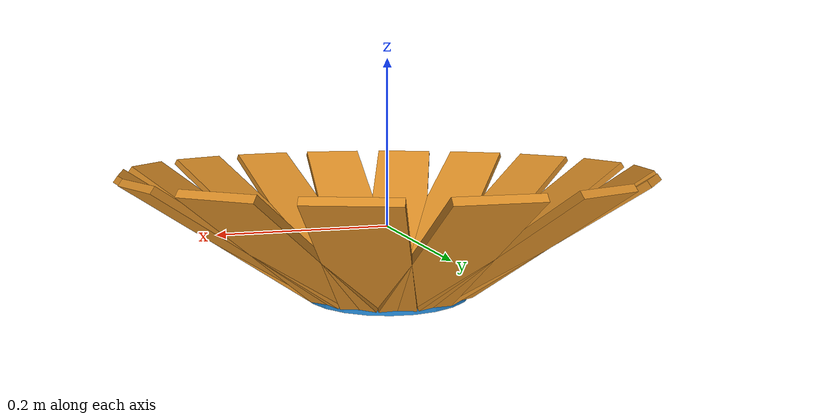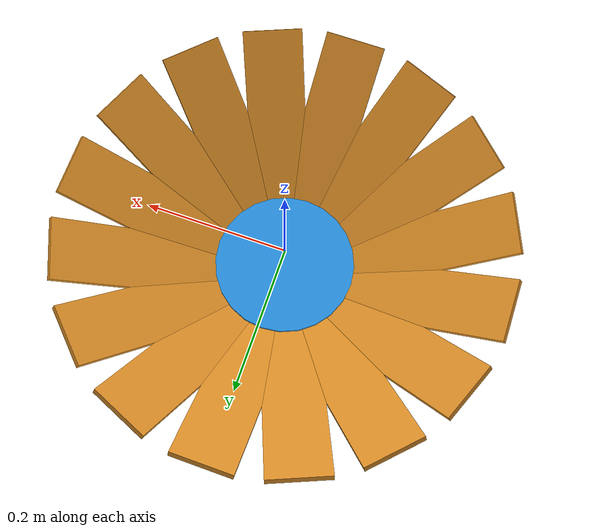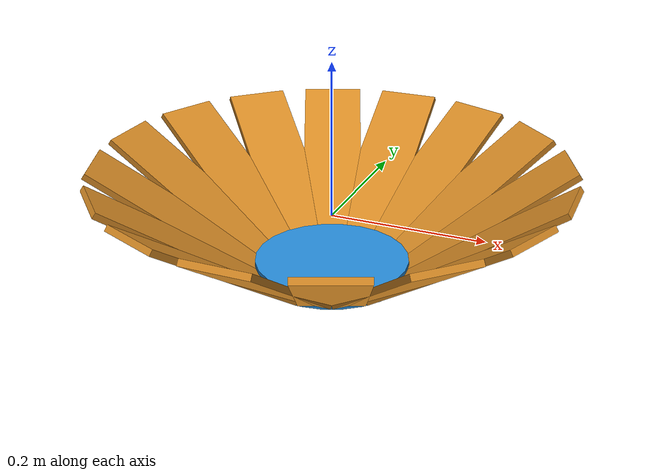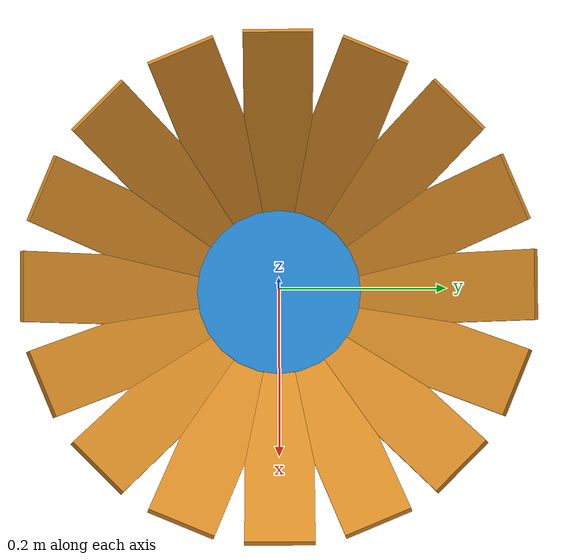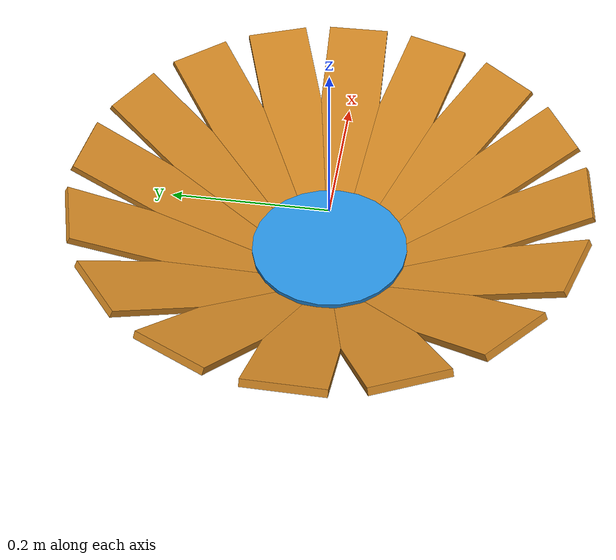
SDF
<?xml version="1.0" encoding="UTF-8"?>
<!-- funnel_cup —— 自动生成（tools/gen_funnel_cup.py）。独立空心导向锥杯（静止），供物理测试。 -->
<sdf version='1.9'>
  <model name='funnel_cup'>
    <static>true</static>
    <link name="cup">
      <pose>0 0 0 0 0 0</pose>
      <inertial><mass>0.08</mass><inertia><ixx>4.0e-4</ixx><iyy>4.0e-4</iyy><izz>4.0e-4</izz><ixy>0</ixy><ixz>0</ixz><iyz>0</iyz></inertia></inertial>
      <collision name="cup_bottom"><pose>0 0 -0.0700 0 0 0</pose><geometry><cylinder><radius>0.1000</radius><length>0.02</length></cylinder></geometry><surface><friction><ode><mu>1.0</mu><mu2>1.0</mu2></ode></friction><bounce><restitution_coefficient>0.03</restitution_coefficient></bounce></surface></collision>
      <collision name="cup_wall_0"><pose>0.2000 0.0000 0.0000 0.0000 -0.6107 0.0000</pose><geometry><box><size>0.2441 0.0827 0.008</size></box></geometry><surface><friction><ode><mu>1.0</mu><mu2>1.0</mu2></ode></friction><bounce><restitution_coefficient>0.03</restitution_coefficient></bounce></surface></collision>
      <collision name="cup_wall_1"><pose>0.1848 0.0765 0.0000 0.0000 -0.6107 0.3927</pose><geometry><box><size>0.2441 0.0827 0.008</size></box></geometry><surface><friction><ode><mu>1.0</mu><mu2>1.0</mu2></ode></friction><bounce><restitution_coefficient>0.03</restitution_coefficient></bounce></surface></collision>
      <collision name="cup_wall_2"><pose>0.1414 0.1414 0.0000 0.0000 -0.6107 0.7854</pose><geometry><box><size>0.2441 0.0827 0.008</size></box></geometry><surface><friction><ode><mu>1.0</mu><mu2>1.0</mu2></ode></friction><bounce><restitution_coefficient>0.03</restitution_coefficient></bounce></surface></collision>
      <collision name="cup_wall_3"><pose>0.0765 0.1848 0.0000 0.0000 -0.6107 1.1781</pose><geometry><box><size>0.2441 0.0827 0.008</size></box></geometry><surface><friction><ode><mu>1.0</mu><mu2>1.0</mu2></ode></friction><bounce><restitution_coefficient>0.03</restitution_coefficient></bounce></surface></collision>
      <collision name="cup_wall_4"><pose>0.0000 0.2000 0.0000 0.0000 -0.6107 1.5708</pose><geometry><box><size>0.2441 0.0827 0.008</size></box></geometry><surface><friction><ode><mu>1.0</mu><mu2>1.0</mu2></ode></friction><bounce><restitution_coefficient>0.03</restitution_coefficient></bounce></surface></collision>
      <collision name="cup_wall_5"><pose>-0.0765 0.1848 0.0000 0.0000 -0.6107 1.9635</pose><geometry><box><size>0.2441 0.0827 0.008</size></box></geometry><surface><friction><ode><mu>1.0</mu><mu2>1.0</mu2></ode></friction><bounce><restitution_coefficient>0.03</restitution_coefficient></bounce></surface></collision>
      <collision name="cup_wall_6"><pose>-0.1414 0.1414 0.0000 0.0000 -0.6107 2.3562</pose><geometry><box><size>0.2441 0.0827 0.008</size></box></geometry><surface><friction><ode><mu>1.0</mu><mu2>1.0</mu2></ode></friction><bounce><restitution_coefficient>0.03</restitution_coefficient></bounce></surface></collision>
      <collision name="cup_wall_7"><pose>-0.1848 0.0765 0.0000 0.0000 -0.6107 2.7489</pose><geometry><box><size>0.2441 0.0827 0.008</size></box></geometry><surface><friction><ode><mu>1.0</mu><mu2>1.0</mu2></ode></friction><bounce><restitution_coefficient>0.03</restitution_coefficient></bounce></surface></collision>
      <collision name="cup_wall_8"><pose>-0.2000 0.0000 0.0000 0.0000 -0.6107 3.1416</pose><geometry><box><size>0.2441 0.0827 0.008</size></box></geometry><surface><friction><ode><mu>1.0</mu><mu2>1.0</mu2></ode></friction><bounce><restitution_coefficient>0.03</restitution_coefficient></bounce></surface></collision>
      <collision name="cup_wall_9"><pose>-0.1848 -0.0765 0.0000 0.0000 -0.6107 3.5343</pose><geometry><box><size>0.2441 0.0827 0.008</size></box></geometry><surface><friction><ode><mu>1.0</mu><mu2>1.0</mu2></ode></friction><bounce><restitution_coefficient>0.03</restitution_coefficient></bounce></surface></collision>
      <collision name="cup_wall_10"><pose>-0.1414 -0.1414 0.0000 0.0000 -0.6107 3.9270</pose><geometry><box><size>0.2441 0.0827 0.008</size></box></geometry><surface><friction><ode><mu>1.0</mu><mu2>1.0</mu2></ode></friction><bounce><restitution_coefficient>0.03</restitution_coefficient></bounce></surface></collision>
      <collision name="cup_wall_11"><pose>-0.0765 -0.1848 0.0000 0.0000 -0.6107 4.3197</pose><geometry><box><size>0.2441 0.0827 0.008</size></box></geometry><surface><friction><ode><mu>1.0</mu><mu2>1.0</mu2></ode></friction><bounce><restitution_coefficient>0.03</restitution_coefficient></bounce></surface></collision>
      <collision name="cup_wall_12"><pose>-0.0000 -0.2000 0.0000 0.0000 -0.6107 4.7124</pose><geometry><box><size>0.2441 0.0827 0.008</size></box></geometry><surface><friction><ode><mu>1.0</mu><mu2>1.0</mu2></ode></friction><bounce><restitution_coefficient>0.03</restitution_coefficient></bounce></surface></collision>
      <collision name="cup_wall_13"><pose>0.0765 -0.1848 0.0000 0.0000 -0.6107 5.1051</pose><geometry><box><size>0.2441 0.0827 0.008</size></box></geometry><surface><friction><ode><mu>1.0</mu><mu2>1.0</mu2></ode></friction><bounce><restitution_coefficient>0.03</restitution_coefficient></bounce></surface></collision>
      <collision name="cup_wall_14"><pose>0.1414 -0.1414 0.0000 0.0000 -0.6107 5.4978</pose><geometry><box><size>0.2441 0.0827 0.008</size></box></geometry><surface><friction><ode><mu>1.0</mu><mu2>1.0</mu2></ode></friction><bounce><restitution_coefficient>0.03</restitution_coefficient></bounce></surface></collision>
      <collision name="cup_wall_15"><pose>0.1848 -0.0765 0.0000 0.0000 -0.6107 5.8905</pose><geometry><box><size>0.2441 0.0827 0.008</size></box></geometry><surface><friction><ode><mu>1.0</mu><mu2>1.0</mu2></ode></friction><bounce><restitution_coefficient>0.03</restitution_coefficient></bounce></surface></collision>
      <visual name="cup_vis"><pose>0 0 -0.0700 0 0 0</pose><geometry><cylinder><radius>0.1000</radius><length>0.02</length></cylinder></geometry><material><ambient>0.15 0.55 0.85 1</ambient><diffuse>0.15 0.55 0.85 1</diffuse></material></visual>
      <visual name="cup_wv_0"><pose>0.2000 0.0000 0.0000 0.0000 -0.6107 0.0000</pose><geometry><box><size>0.2441 0.0827 0.008</size></box></geometry><material><ambient>0.85 0.55 0.15 1</ambient><diffuse>0.85 0.55 0.15 1</diffuse></material></visual>
      <visual name="cup_wv_1"><pose>0.1848 0.0765 0.0000 0.0000 -0.6107 0.3927</pose><geometry><box><size>0.2441 0.0827 0.008</size></box></geometry><material><ambient>0.85 0.55 0.15 1</ambient><diffuse>0.85 0.55 0.15 1</diffuse></material></visual>
      <visual name="cup_wv_2"><pose>0.1414 0.1414 0.0000 0.0000 -0.6107 0.7854</pose><geometry><box><size>0.2441 0.0827 0.008</size></box></geometry><material><ambient>0.85 0.55 0.15 1</ambient><diffuse>0.85 0.55 0.15 1</diffuse></material></visual>
      <visual name="cup_wv_3"><pose>0.0765 0.1848 0.0000 0.0000 -0.6107 1.1781</pose><geometry><box><size>0.2441 0.0827 0.008</size></box></geometry><material><ambient>0.85 0.55 0.15 1</ambient><diffuse>0.85 0.55 0.15 1</diffuse></material></visual>
      <visual name="cup_wv_4"><pose>0.0000 0.2000 0.0000 0.0000 -0.6107 1.5708</pose><geometry><box><size>0.2441 0.0827 0.008</size></box></geometry><material><ambient>0.85 0.55 0.15 1</ambient><diffuse>0.85 0.55 0.15 1</diffuse></material></visual>
      <visual name="cup_wv_5"><pose>-0.0765 0.1848 0.0000 0.0000 -0.6107 1.9635</pose><geometry><box><size>0.2441 0.0827 0.008</size></box></geometry><material><ambient>0.85 0.55 0.15 1</ambient><diffuse>0.85 0.55 0.15 1</diffuse></material></visual>
      <visual name="cup_wv_6"><pose>-0.1414 0.1414 0.0000 0.0000 -0.6107 2.3562</pose><geometry><box><size>0.2441 0.0827 0.008</size></box></geometry><material><ambient>0.85 0.55 0.15 1</ambient><diffuse>0.85 0.55 0.15 1</diffuse></material></visual>
      <visual name="cup_wv_7"><pose>-0.1848 0.0765 0.0000 0.0000 -0.6107 2.7489</pose><geometry><box><size>0.2441 0.0827 0.008</size></box></geometry><material><ambient>0.85 0.55 0.15 1</ambient><diffuse>0.85 0.55 0.15 1</diffuse></material></visual>
      <visual name="cup_wv_8"><pose>-0.2000 0.0000 0.0000 0.0000 -0.6107 3.1416</pose><geometry><box><size>0.2441 0.0827 0.008</size></box></geometry><material><ambient>0.85 0.55 0.15 1</ambient><diffuse>0.85 0.55 0.15 1</diffuse></material></visual>
      <visual name="cup_wv_9"><pose>-0.1848 -0.0765 0.0000 0.0000 -0.6107 3.5343</pose><geometry><box><size>0.2441 0.0827 0.008</size></box></geometry><material><ambient>0.85 0.55 0.15 1</ambient><diffuse>0.85 0.55 0.15 1</diffuse></material></visual>
      <visual name="cup_wv_10"><pose>-0.1414 -0.1414 0.0000 0.0000 -0.6107 3.9270</pose><geometry><box><size>0.2441 0.0827 0.008</size></box></geometry><material><ambient>0.85 0.55 0.15 1</ambient><diffuse>0.85 0.55 0.15 1</diffuse></material></visual>
      <visual name="cup_wv_11"><pose>-0.0765 -0.1848 0.0000 0.0000 -0.6107 4.3197</pose><geometry><box><size>0.2441 0.0827 0.008</size></box></geometry><material><ambient>0.85 0.55 0.15 1</ambient><diffuse>0.85 0.55 0.15 1</diffuse></material></visual>
      <visual name="cup_wv_12"><pose>-0.0000 -0.2000 0.0000 0.0000 -0.6107 4.7124</pose><geometry><box><size>0.2441 0.0827 0.008</size></box></geometry><material><ambient>0.85 0.55 0.15 1</ambient><diffuse>0.85 0.55 0.15 1</diffuse></material></visual>
      <visual name="cup_wv_13"><pose>0.0765 -0.1848 0.0000 0.0000 -0.6107 5.1051</pose><geometry><box><size>0.2441 0.0827 0.008</size></box></geometry><material><ambient>0.85 0.55 0.15 1</ambient><diffuse>0.85 0.55 0.15 1</diffuse></material></visual>
      <visual name="cup_wv_14"><pose>0.1414 -0.1414 0.0000 0.0000 -0.6107 5.4978</pose><geometry><box><size>0.2441 0.0827 0.008</size></box></geometry><material><ambient>0.85 0.55 0.15 1</ambient><diffuse>0.85 0.55 0.15 1</diffuse></material></visual>
      <visual name="cup_wv_15"><pose>0.1848 -0.0765 0.0000 0.0000 -0.6107 5.8905</pose><geometry><box><size>0.2441 0.0827 0.008</size></box></geometry><material><ambient>0.85 0.55 0.15 1</ambient><diffuse>0.85 0.55 0.15 1</diffuse></material></visual>
    </link>
  </model>
</sdf>
